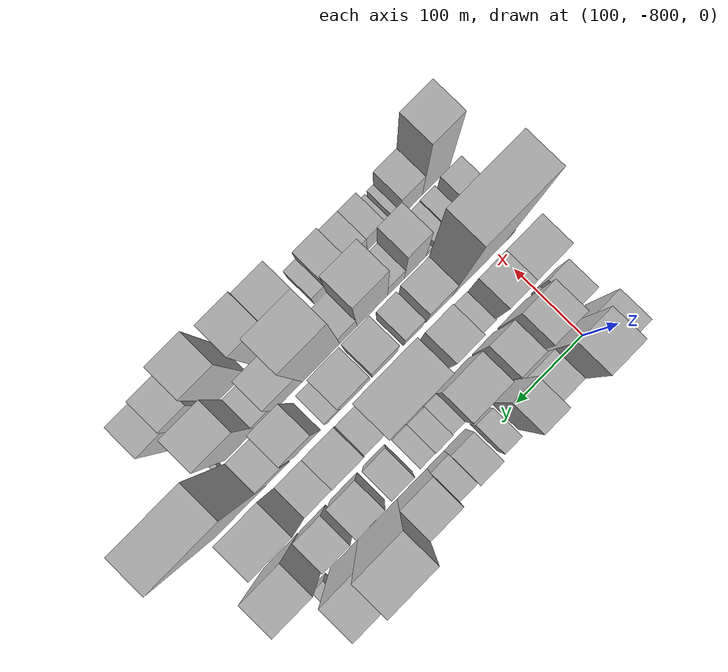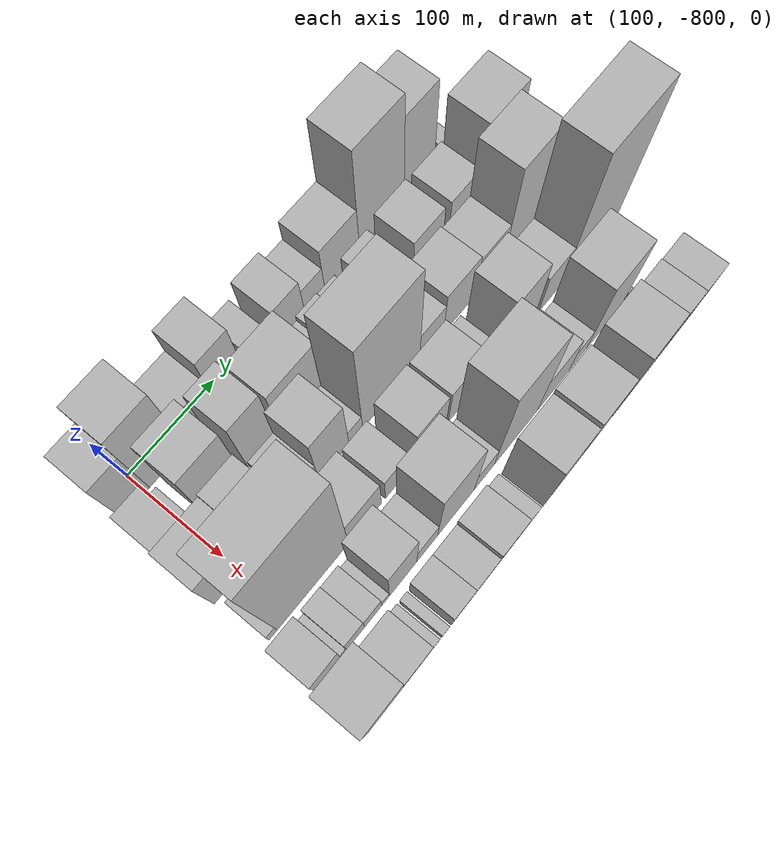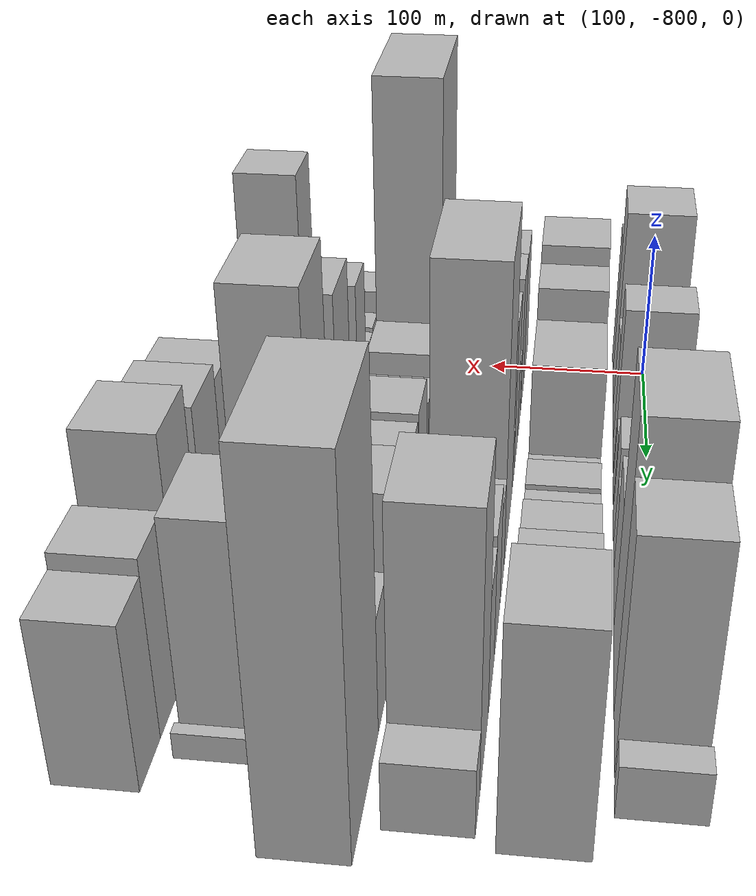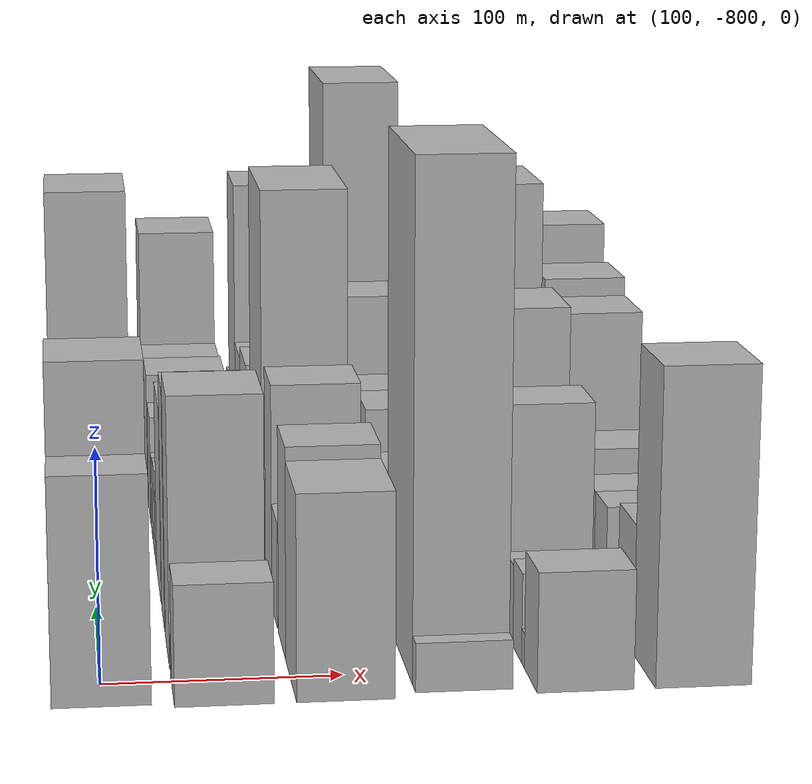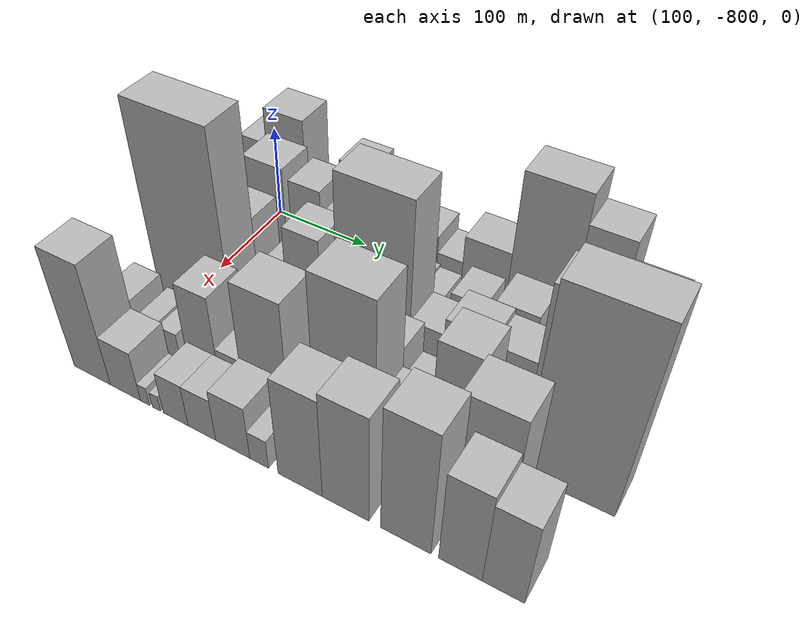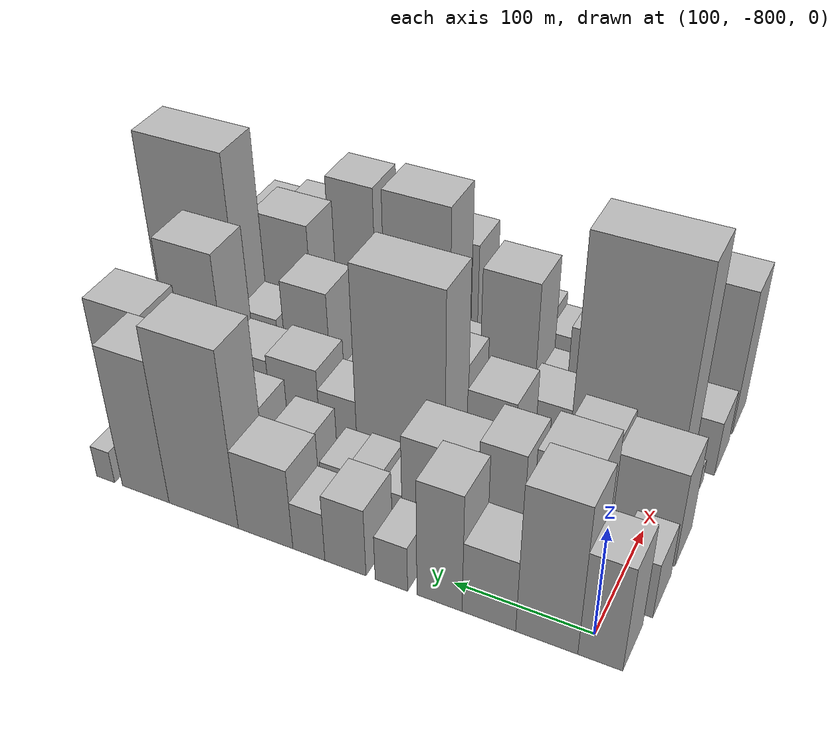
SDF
<sdf version="1.6">
 <world name="default">
  <model name="building_1">
   <static>1</static>
   <pose>100.0000 -810.8486 0 0.000000 0.000000 0.000000</pose>
   <link name="link">
    <pose>0 0 48.00 0 0 0</pose>
    <collision name="collision"><geometry><box><size>40.0000 30.3027 96.0000</size></box></geometry></collision>
    <visual name="visual">
     <cast_shadows>0</cast_shadows>
     <geometry><box><size>40.0000 30.3027 96.0000</size></box></geometry>
     <material>
      <script>
       <uri>model://HANNAS_wall/materials/scripts</uri>
       <uri>model://HANNAS_wall/materials/textures</uri>
       <name>vrc/HANNAS_wall</name>
      </script>
     </material>
    </visual>
   </link>
  </model>
  <model name="building_2">
   <static>1</static>
   <pose>100.0000 -774.1942 0 0.000000 0.000000 0.000000</pose>
   <link name="link">
    <pose>0 0 67.50 0 0 0</pose>
    <collision name="collision"><geometry><box><size>40.0000 43.0061 135.0000</size></box></geometry></collision>
    <visual name="visual">
     <cast_shadows>0</cast_shadows>
     <geometry><box><size>40.0000 43.0061 135.0000</size></box></geometry>
     <material>
      <script>
       <uri>model://HANNAS_wall/materials/scripts</uri>
       <uri>model://HANNAS_wall/materials/textures</uri>
       <name>vrc/HANNAS_wall</name>
      </script>
     </material>
    </visual>
   </link>
  </model>
  <model name="building_3">
   <static>1</static>
   <pose>100.0000 -733.5180 0 0.000000 0.000000 0.000000</pose>
   <link name="link">
    <pose>0 0 33.00 0 0 0</pose>
    <collision name="collision"><geometry><box><size>40.0000 38.3464 66.0000</size></box></geometry></collision>
    <visual name="visual">
     <cast_shadows>0</cast_shadows>
     <geometry><box><size>40.0000 38.3464 66.0000</size></box></geometry>
     <material>
      <script>
       <uri>model://HANNAS_wall/materials/scripts</uri>
       <uri>model://HANNAS_wall/materials/textures</uri>
       <name>vrc/HANNAS_wall</name>
      </script>
     </material>
    </visual>
   </link>
  </model>
  <model name="building_4">
   <static>1</static>
   <pose>100.0000 -697.7857 0 0.000000 0.000000 0.000000</pose>
   <link name="link">
    <pose>0 0 54.00 0 0 0</pose>
    <collision name="collision"><geometry><box><size>40.0000 33.1181 108.0000</size></box></geometry></collision>
    <visual name="visual">
     <cast_shadows>0</cast_shadows>
     <geometry><box><size>40.0000 33.1181 108.0000</size></box></geometry>
     <material>
      <script>
       <uri>model://HANNAS_wall/materials/scripts</uri>
       <uri>model://HANNAS_wall/materials/textures</uri>
       <name>vrc/HANNAS_wall</name>
      </script>
     </material>
    </visual>
   </link>
  </model>
  <model name="building_5">
   <static>1</static>
   <pose>100.0000 -661.9748 0 0.000000 0.000000 0.000000</pose>
   <link name="link">
    <pose>0 0 21.00 0 0 0</pose>
    <collision name="collision"><geometry><box><size>40.0000 24.5038 42.0000</size></box></geometry></collision>
    <visual name="visual">
     <cast_shadows>0</cast_shadows>
     <geometry><box><size>40.0000 24.5038 42.0000</size></box></geometry>
     <material>
      <script>
       <uri>model://HANNAS_wall/materials/scripts</uri>
       <uri>model://HANNAS_wall/materials/textures</uri>
       <name>vrc/HANNAS_wall</name>
      </script>
     </material>
    </visual>
   </link>
  </model>
  <model name="building_6">
   <static>1</static>
   <pose>100.0000 -626.8014 0 0.000000 0.000000 0.000000</pose>
   <link name="link">
    <pose>0 0 31.50 0 0 0</pose>
    <collision name="collision"><geometry><box><size>40.0000 31.8430 63.0000</size></box></geometry></collision>
    <visual name="visual">
     <cast_shadows>0</cast_shadows>
     <geometry><box><size>40.0000 31.8430 63.0000</size></box></geometry>
     <material>
      <script>
       <uri>model://HANNAS_wall/materials/scripts</uri>
       <uri>model://HANNAS_wall/materials/textures</uri>
       <name>vrc/HANNAS_wall</name>
      </script>
     </material>
    </visual>
   </link>
  </model>
  <model name="building_7">
   <static>1</static>
   <pose>100.0000 -598.2045 0 0.000000 0.000000 0.000000</pose>
   <link name="link">
    <pose>0 0 22.50 0 0 0</pose>
    <collision name="collision"><geometry><box><size>40.0000 25.3507 45.0000</size></box></geometry></collision>
    <visual name="visual">
     <cast_shadows>0</cast_shadows>
     <geometry><box><size>40.0000 25.3507 45.0000</size></box></geometry>
     <material>
      <script>
       <uri>model://HANNAS_wall/materials/scripts</uri>
       <uri>model://HANNAS_wall/materials/textures</uri>
       <name>vrc/HANNAS_wall</name>
      </script>
     </material>
    </visual>
   </link>
  </model>
  <model name="building_8">
   <static>1</static>
   <pose>100.0000 -563.3122 0 0.000000 0.000000 0.000000</pose>
   <link name="link">
    <pose>0 0 37.50 0 0 0</pose>
    <collision name="collision"><geometry><box><size>40.0000 44.4339 75.0000</size></box></geometry></collision>
    <visual name="visual">
     <cast_shadows>0</cast_shadows>
     <geometry><box><size>40.0000 44.4339 75.0000</size></box></geometry>
     <material>
      <script>
       <uri>model://HANNAS_wall/materials/scripts</uri>
       <uri>model://HANNAS_wall/materials/textures</uri>
       <name>vrc/HANNAS_wall</name>
      </script>
     </material>
    </visual>
   </link>
  </model>
  <model name="building_9">
   <static>1</static>
   <pose>100.0000 -511.8582 0 0.000000 0.000000 0.000000</pose>
   <link name="link">
    <pose>0 0 81.00 0 0 0</pose>
    <collision name="collision"><geometry><box><size>40.0000 58.4741 162.0000</size></box></geometry></collision>
    <visual name="visual">
     <cast_shadows>0</cast_shadows>
     <geometry><box><size>40.0000 58.4741 162.0000</size></box></geometry>
     <material>
      <script>
       <uri>model://HANNAS_wall/materials/scripts</uri>
       <uri>model://HANNAS_wall/materials/textures</uri>
       <name>vrc/HANNAS_wall</name>
      </script>
     </material>
    </visual>
   </link>
  </model>
  <model name="building_10">
   <static>1</static>
   <pose>100.0000 -462.2591 0 0.000000 0.000000 0.000000</pose>
   <link name="link">
    <pose>0 0 66.00 0 0 0</pose>
    <collision name="collision"><geometry><box><size>40.0000 40.7242 132.0000</size></box></geometry></collision>
    <visual name="visual">
     <cast_shadows>0</cast_shadows>
     <geometry><box><size>40.0000 40.7242 132.0000</size></box></geometry>
     <material>
      <script>
       <uri>model://HANNAS_wall/materials/scripts</uri>
       <uri>model://HANNAS_wall/materials/textures</uri>
       <name>vrc/HANNAS_wall</name>
      </script>
     </material>
    </visual>
   </link>
  </model>
  <model name="building_11">
   <static>1</static>
   <pose>100.0000 -426.9195 0 0.000000 0.000000 0.000000</pose>
   <link name="link">
    <pose>0 0 15.00 0 0 0</pose>
    <collision name="collision"><geometry><box><size>40.0000 15.9549 30.0000</size></box></geometry></collision>
    <visual name="visual">
     <cast_shadows>0</cast_shadows>
     <geometry><box><size>40.0000 15.9549 30.0000</size></box></geometry>
     <material>
      <script>
       <uri>model://HANNAS_wall/materials/scripts</uri>
       <uri>model://HANNAS_wall/materials/textures</uri>
       <name>vrc/HANNAS_wall</name>
      </script>
     </material>
    </visual>
   </link>
  </model>
  <model name="building_44">
   <static>1</static>
   <pose>149.0000 -815.3887 0 0.000000 0.000000 0.000000</pose>
   <link name="link">
    <pose>0 0 25.50 0 0 0</pose>
    <collision name="collision"><geometry><box><size>40.0000 29.2225 51.0000</size></box></geometry></collision>
    <visual name="visual">
     <cast_shadows>0</cast_shadows>
     <geometry><box><size>40.0000 29.2225 51.0000</size></box></geometry>
     <material>
      <script>
       <uri>model://HANNAS_wall/materials/scripts</uri>
       <uri>model://HANNAS_wall/materials/textures</uri>
       <name>vrc/HANNAS_wall</name>
      </script>
     </material>
    </visual>
   </link>
  </model>
  <model name="building_45">
   <static>1</static>
   <pose>149.0000 -796.7744 0 0.000000 0.000000 0.000000</pose>
   <link name="link">
    <pose>0 0 9.00 0 0 0</pose>
    <collision name="collision"><geometry><box><size>40.0000 8.0061 18.0000</size></box></geometry></collision>
    <visual name="visual">
     <cast_shadows>0</cast_shadows>
     <geometry><box><size>40.0000 8.0061 18.0000</size></box></geometry>
     <material>
      <script>
       <uri>model://HANNAS_wall/materials/scripts</uri>
       <uri>model://HANNAS_wall/materials/textures</uri>
       <name>vrc/HANNAS_wall</name>
      </script>
     </material>
    </visual>
   </link>
  </model>
  <model name="building_46">
   <static>1</static>
   <pose>149.0000 -763.4466 0 0.000000 0.000000 0.000000</pose>
   <link name="link">
    <pose>0 0 58.50 0 0 0</pose>
    <collision name="collision"><geometry><box><size>40.0000 42.6495 117.0000</size></box></geometry></collision>
    <visual name="visual">
     <cast_shadows>0</cast_shadows>
     <geometry><box><size>40.0000 42.6495 117.0000</size></box></geometry>
     <material>
      <script>
       <uri>model://HANNAS_wall/materials/scripts</uri>
       <uri>model://HANNAS_wall/materials/textures</uri>
       <name>vrc/HANNAS_wall</name>
      </script>
     </material>
    </visual>
   </link>
  </model>
  <model name="building_47">
   <static>1</static>
   <pose>149.0000 -719.6608 0 0.000000 0.000000 0.000000</pose>
   <link name="link">
    <pose>0 0 54.00 0 0 0</pose>
    <collision name="collision"><geometry><box><size>40.0000 32.9222 108.0000</size></box></geometry></collision>
    <visual name="visual">
     <cast_shadows>0</cast_shadows>
     <geometry><box><size>40.0000 32.9222 108.0000</size></box></geometry>
     <material>
      <script>
       <uri>model://HANNAS_wall/materials/scripts</uri>
       <uri>model://HANNAS_wall/materials/textures</uri>
       <name>vrc/HANNAS_wall</name>
      </script>
     </material>
    </visual>
   </link>
  </model>
  <model name="building_48">
   <static>1</static>
   <pose>149.0000 -672.5919 0 0.000000 0.000000 0.000000</pose>
   <link name="link">
    <pose>0 0 45.00 0 0 0</pose>
    <collision name="collision"><geometry><box><size>40.0000 53.2155 90.0000</size></box></geometry></collision>
    <visual name="visual">
     <cast_shadows>0</cast_shadows>
     <geometry><box><size>40.0000 53.2155 90.0000</size></box></geometry>
     <material>
      <script>
       <uri>model://HANNAS_wall/materials/scripts</uri>
       <uri>model://HANNAS_wall/materials/textures</uri>
       <name>vrc/HANNAS_wall</name>
      </script>
     </material>
    </visual>
   </link>
  </model>
  <model name="building_49">
   <static>1</static>
   <pose>149.0000 -636.8021 0 0.000000 0.000000 0.000000</pose>
   <link name="link">
    <pose>0 0 16.50 0 0 0</pose>
    <collision name="collision"><geometry><box><size>40.0000 18.3640 33.0000</size></box></geometry></collision>
    <visual name="visual">
     <cast_shadows>0</cast_shadows>
     <geometry><box><size>40.0000 18.3640 33.0000</size></box></geometry>
     <material>
      <script>
       <uri>model://HANNAS_wall/materials/scripts</uri>
       <uri>model://HANNAS_wall/materials/textures</uri>
       <name>vrc/HANNAS_wall</name>
      </script>
     </material>
    </visual>
   </link>
  </model>
  <model name="building_50">
   <static>1</static>
   <pose>149.0000 -615.2574 0 0.000000 0.000000 0.000000</pose>
   <link name="link">
    <pose>0 0 21.00 0 0 0</pose>
    <collision name="collision"><geometry><box><size>40.0000 24.7254 42.0000</size></box></geometry></collision>
    <visual name="visual">
     <cast_shadows>0</cast_shadows>
     <geometry><box><size>40.0000 24.7254 42.0000</size></box></geometry>
     <material>
      <script>
       <uri>model://HANNAS_wall/materials/scripts</uri>
       <uri>model://HANNAS_wall/materials/textures</uri>
       <name>vrc/HANNAS_wall</name>
      </script>
     </material>
    </visual>
   </link>
  </model>
  <model name="building_51">
   <static>1</static>
   <pose>149.0000 -592.1713 0 0.000000 0.000000 0.000000</pose>
   <link name="link">
    <pose>0 0 19.50 0 0 0</pose>
    <collision name="collision"><geometry><box><size>40.0000 21.4468 39.0000</size></box></geometry></collision>
    <visual name="visual">
     <cast_shadows>0</cast_shadows>
     <geometry><box><size>40.0000 21.4468 39.0000</size></box></geometry>
     <material>
      <script>
       <uri>model://HANNAS_wall/materials/scripts</uri>
       <uri>model://HANNAS_wall/materials/textures</uri>
       <name>vrc/HANNAS_wall</name>
      </script>
     </material>
    </visual>
   </link>
  </model>
  <model name="building_52">
   <static>1</static>
   <pose>149.0000 -556.4604 0 0.000000 0.000000 0.000000</pose>
   <link name="link">
    <pose>0 0 27.00 0 0 0</pose>
    <collision name="collision"><geometry><box><size>40.0000 31.9750 54.0000</size></box></geometry></collision>
    <visual name="visual">
     <cast_shadows>0</cast_shadows>
     <geometry><box><size>40.0000 31.9750 54.0000</size></box></geometry>
     <material>
      <script>
       <uri>model://HANNAS_wall/materials/scripts</uri>
       <uri>model://HANNAS_wall/materials/textures</uri>
       <name>vrc/HANNAS_wall</name>
      </script>
     </material>
    </visual>
   </link>
  </model>
  <model name="building_53">
   <static>1</static>
   <pose>149.0000 -512.0067 0 0.000000 0.000000 0.000000</pose>
   <link name="link">
    <pose>0 0 33.00 0 0 0</pose>
    <collision name="collision"><geometry><box><size>40.0000 38.9326 66.0000</size></box></geometry></collision>
    <visual name="visual">
     <cast_shadows>0</cast_shadows>
     <geometry><box><size>40.0000 38.9326 66.0000</size></box></geometry>
     <material>
      <script>
       <uri>model://HANNAS_wall/materials/scripts</uri>
       <uri>model://HANNAS_wall/materials/textures</uri>
       <name>vrc/HANNAS_wall</name>
      </script>
     </material>
    </visual>
   </link>
  </model>
  <model name="building_54">
   <static>1</static>
   <pose>149.0000 -465.9677 0 0.000000 0.000000 0.000000</pose>
   <link name="link">
    <pose>0 0 31.50 0 0 0</pose>
    <collision name="collision"><geometry><box><size>40.0000 37.1453 63.0000</size></box></geometry></collision>
    <visual name="visual">
     <cast_shadows>0</cast_shadows>
     <geometry><box><size>40.0000 37.1453 63.0000</size></box></geometry>
     <material>
      <script>
       <uri>model://HANNAS_wall/materials/scripts</uri>
       <uri>model://HANNAS_wall/materials/textures</uri>
       <name>vrc/HANNAS_wall</name>
      </script>
     </material>
    </visual>
   </link>
  </model>
  <model name="building_55">
   <static>1</static>
   <pose>149.0000 -418.8858 0 0.000000 0.000000 0.000000</pose>
   <link name="link">
    <pose>0 0 61.50 0 0 0</pose>
    <collision name="collision"><geometry><box><size>40.0000 49.0186 123.0000</size></box></geometry></collision>
    <visual name="visual">
     <cast_shadows>0</cast_shadows>
     <geometry><box><size>40.0000 49.0186 123.0000</size></box></geometry>
     <material>
      <script>
       <uri>model://HANNAS_wall/materials/scripts</uri>
       <uri>model://HANNAS_wall/materials/textures</uri>
       <name>vrc/HANNAS_wall</name>
      </script>
     </material>
    </visual>
   </link>
  </model>
  <model name="building_93">
   <static>1</static>
   <pose>198.0000 -805.1397 0 0.000000 0.000000 0.000000</pose>
   <link name="link">
    <pose>0 0 43.50 0 0 0</pose>
    <collision name="collision"><geometry><box><size>40.0000 49.7205 87.0000</size></box></geometry></collision>
    <visual name="visual">
     <cast_shadows>0</cast_shadows>
     <geometry><box><size>40.0000 49.7205 87.0000</size></box></geometry>
     <material>
      <script>
       <uri>model://HANNAS_wall/materials/scripts</uri>
       <uri>model://HANNAS_wall/materials/textures</uri>
       <name>vrc/HANNAS_wall</name>
      </script>
     </material>
    </visual>
   </link>
  </model>
  <model name="building_94">
   <static>1</static>
   <pose>198.0000 -761.9925 0 0.000000 0.000000 0.000000</pose>
   <link name="link">
    <pose>0 0 46.50 0 0 0</pose>
    <collision name="collision"><geometry><box><size>40.0000 36.5740 93.0000</size></box></geometry></collision>
    <visual name="visual">
     <cast_shadows>0</cast_shadows>
     <geometry><box><size>40.0000 36.5740 93.0000</size></box></geometry>
     <material>
      <script>
       <uri>model://HANNAS_wall/materials/scripts</uri>
       <uri>model://HANNAS_wall/materials/textures</uri>
       <name>vrc/HANNAS_wall</name>
      </script>
     </material>
    </visual>
   </link>
  </model>
  <model name="building_95">
   <static>1</static>
   <pose>198.0000 -723.4073 0 0.000000 0.000000 0.000000</pose>
   <link name="link">
    <pose>0 0 24.00 0 0 0</pose>
    <collision name="collision"><geometry><box><size>40.0000 28.5965 48.0000</size></box></geometry></collision>
    <visual name="visual">
     <cast_shadows>0</cast_shadows>
     <geometry><box><size>40.0000 28.5965 48.0000</size></box></geometry>
     <material>
      <script>
       <uri>model://HANNAS_wall/materials/scripts</uri>
       <uri>model://HANNAS_wall/materials/textures</uri>
       <name>vrc/HANNAS_wall</name>
      </script>
     </material>
    </visual>
   </link>
  </model>
  <model name="building_96">
   <static>1</static>
   <pose>198.0000 -690.9135 0 0.000000 0.000000 0.000000</pose>
   <link name="link">
    <pose>0 0 51.00 0 0 0</pose>
    <collision name="collision"><geometry><box><size>40.0000 36.3909 102.0000</size></box></geometry></collision>
    <visual name="visual">
     <cast_shadows>0</cast_shadows>
     <geometry><box><size>40.0000 36.3909 102.0000</size></box></geometry>
     <material>
      <script>
       <uri>model://HANNAS_wall/materials/scripts</uri>
       <uri>model://HANNAS_wall/materials/textures</uri>
       <name>vrc/HANNAS_wall</name>
      </script>
     </material>
    </visual>
   </link>
  </model>
  <model name="building_97">
   <static>1</static>
   <pose>198.0000 -664.4490 0 0.000000 0.000000 0.000000</pose>
   <link name="link">
    <pose>0 0 16.50 0 0 0</pose>
    <collision name="collision"><geometry><box><size>40.0000 16.5383 33.0000</size></box></geometry></collision>
    <visual name="visual">
     <cast_shadows>0</cast_shadows>
     <geometry><box><size>40.0000 16.5383 33.0000</size></box></geometry>
     <material>
      <script>
       <uri>model://HANNAS_wall/materials/scripts</uri>
       <uri>model://HANNAS_wall/materials/textures</uri>
       <name>vrc/HANNAS_wall</name>
      </script>
     </material>
    </visual>
   </link>
  </model>
  <model name="building_98">
   <static>1</static>
   <pose>198.0000 -620.3530 0 0.000000 0.000000 0.000000</pose>
   <link name="link">
    <pose>0 0 90.00 0 0 0</pose>
    <collision name="collision"><geometry><box><size>40.0000 71.6537 180.0000</size></box></geometry></collision>
    <visual name="visual">
     <cast_shadows>0</cast_shadows>
     <geometry><box><size>40.0000 71.6537 180.0000</size></box></geometry>
     <material>
      <script>
       <uri>model://HANNAS_wall/materials/scripts</uri>
       <uri>model://HANNAS_wall/materials/textures</uri>
       <name>vrc/HANNAS_wall</name>
      </script>
     </material>
    </visual>
   </link>
  </model>
  <model name="building_99">
   <static>1</static>
   <pose>198.0000 -568.9089 0 0.000000 0.000000 0.000000</pose>
   <link name="link">
    <pose>0 0 28.50 0 0 0</pose>
    <collision name="collision"><geometry><box><size>40.0000 31.2344 57.0000</size></box></geometry></collision>
    <visual name="visual">
     <cast_shadows>0</cast_shadows>
     <geometry><box><size>40.0000 31.2344 57.0000</size></box></geometry>
     <material>
      <script>
       <uri>model://HANNAS_wall/materials/scripts</uri>
       <uri>model://HANNAS_wall/materials/textures</uri>
       <name>vrc/HANNAS_wall</name>
      </script>
     </material>
    </visual>
   </link>
  </model>
  <model name="building_100">
   <static>1</static>
   <pose>198.0000 -532.1586 0 0.000000 0.000000 0.000000</pose>
   <link name="link">
    <pose>0 0 37.50 0 0 0</pose>
    <collision name="collision"><geometry><box><size>40.0000 42.2663 75.0000</size></box></geometry></collision>
    <visual name="visual">
     <cast_shadows>0</cast_shadows>
     <geometry><box><size>40.0000 42.2663 75.0000</size></box></geometry>
     <material>
      <script>
       <uri>model://HANNAS_wall/materials/scripts</uri>
       <uri>model://HANNAS_wall/materials/textures</uri>
       <name>vrc/HANNAS_wall</name>
      </script>
     </material>
    </visual>
   </link>
  </model>
  <model name="building_101">
   <static>1</static>
   <pose>198.0000 -492.3566 0 0.000000 0.000000 0.000000</pose>
   <link name="link">
    <pose>0 0 34.50 0 0 0</pose>
    <collision name="collision"><geometry><box><size>40.0000 37.3378 69.0000</size></box></geometry></collision>
    <visual name="visual">
     <cast_shadows>0</cast_shadows>
     <geometry><box><size>40.0000 37.3378 69.0000</size></box></geometry>
     <material>
      <script>
       <uri>model://HANNAS_wall/materials/scripts</uri>
       <uri>model://HANNAS_wall/materials/textures</uri>
       <name>vrc/HANNAS_wall</name>
      </script>
     </material>
    </visual>
   </link>
  </model>
  <model name="building_102">
   <static>1</static>
   <pose>198.0000 -448.8772 0 0.000000 0.000000 0.000000</pose>
   <link name="link">
    <pose>0 0 76.50 0 0 0</pose>
    <collision name="collision"><geometry><box><size>40.0000 49.6210 153.0000</size></box></geometry></collision>
    <visual name="visual">
     <cast_shadows>0</cast_shadows>
     <geometry><box><size>40.0000 49.6210 153.0000</size></box></geometry>
     <material>
      <script>
       <uri>model://HANNAS_wall/materials/scripts</uri>
       <uri>model://HANNAS_wall/materials/textures</uri>
       <name>vrc/HANNAS_wall</name>
      </script>
     </material>
    </visual>
   </link>
  </model>
  <model name="building_103">
   <static>1</static>
   <pose>198.0000 -412.6466 0 0.000000 0.000000 0.000000</pose>
   <link name="link">
    <pose>0 0 19.50 0 0 0</pose>
    <collision name="collision"><geometry><box><size>40.0000 22.8403 39.0000</size></box></geometry></collision>
    <visual name="visual">
     <cast_shadows>0</cast_shadows>
     <geometry><box><size>40.0000 22.8403 39.0000</size></box></geometry>
     <material>
      <script>
       <uri>model://HANNAS_wall/materials/scripts</uri>
       <uri>model://HANNAS_wall/materials/textures</uri>
       <name>vrc/HANNAS_wall</name>
      </script>
     </material>
    </visual>
   </link>
  </model>
  <model name="building_139">
   <static>1</static>
   <pose>247.0000 -819.3957 0 0.000000 0.000000 0.000000</pose>
   <link name="link">
    <pose>0 0 10.50 0 0 0</pose>
    <collision name="collision"><geometry><box><size>40.0000 9.2087 21.0000</size></box></geometry></collision>
    <visual name="visual">
     <cast_shadows>0</cast_shadows>
     <geometry><box><size>40.0000 9.2087 21.0000</size></box></geometry>
     <material>
      <script>
       <uri>model://HANNAS_wall/materials/scripts</uri>
       <uri>model://HANNAS_wall/materials/textures</uri>
       <name>vrc/HANNAS_wall</name>
      </script>
     </material>
    </visual>
   </link>
  </model>
  <model name="building_140">
   <static>1</static>
   <pose>247.0000 -773.5808 0 0.000000 0.000000 0.000000</pose>
   <link name="link">
    <pose>0 0 109.50 0 0 0</pose>
    <collision name="collision"><geometry><box><size>40.0000 82.4210 219.0000</size></box></geometry></collision>
    <visual name="visual">
     <cast_shadows>0</cast_shadows>
     <geometry><box><size>40.0000 82.4210 219.0000</size></box></geometry>
     <material>
      <script>
       <uri>model://HANNAS_wall/materials/scripts</uri>
       <uri>model://HANNAS_wall/materials/textures</uri>
       <name>vrc/HANNAS_wall</name>
      </script>
     </material>
    </visual>
   </link>
  </model>
  <model name="building_141">
   <static>1</static>
   <pose>247.0000 -712.7684 0 0.000000 0.000000 0.000000</pose>
   <link name="link">
    <pose>0 0 33.00 0 0 0</pose>
    <collision name="collision"><geometry><box><size>40.0000 39.2038 66.0000</size></box></geometry></collision>
    <visual name="visual">
     <cast_shadows>0</cast_shadows>
     <geometry><box><size>40.0000 39.2038 66.0000</size></box></geometry>
     <material>
      <script>
       <uri>model://HANNAS_wall/materials/scripts</uri>
       <uri>model://HANNAS_wall/materials/textures</uri>
       <name>vrc/HANNAS_wall</name>
      </script>
     </material>
    </visual>
   </link>
  </model>
  <model name="building_142">
   <static>1</static>
   <pose>247.0000 -674.0075 0 0.000000 0.000000 0.000000</pose>
   <link name="link">
    <pose>0 0 27.00 0 0 0</pose>
    <collision name="collision"><geometry><box><size>40.0000 28.3180 54.0000</size></box></geometry></collision>
    <visual name="visual">
     <cast_shadows>0</cast_shadows>
     <geometry><box><size>40.0000 28.3180 54.0000</size></box></geometry>
     <material>
      <script>
       <uri>model://HANNAS_wall/materials/scripts</uri>
       <uri>model://HANNAS_wall/materials/textures</uri>
       <name>vrc/HANNAS_wall</name>
      </script>
     </material>
    </visual>
   </link>
  </model>
  <model name="building_143">
   <static>1</static>
   <pose>247.0000 -631.9404 0 0.000000 0.000000 0.000000</pose>
   <link name="link">
    <pose>0 0 37.50 0 0 0</pose>
    <collision name="collision"><geometry><box><size>40.0000 37.8161 75.0000</size></box></geometry></collision>
    <visual name="visual">
     <cast_shadows>0</cast_shadows>
     <geometry><box><size>40.0000 37.8161 75.0000</size></box></geometry>
     <material>
      <script>
       <uri>model://HANNAS_wall/materials/scripts</uri>
       <uri>model://HANNAS_wall/materials/textures</uri>
       <name>vrc/HANNAS_wall</name>
      </script>
     </material>
    </visual>
   </link>
  </model>
  <model name="building_144">
   <static>1</static>
   <pose>247.0000 -588.4529 0 0.000000 0.000000 0.000000</pose>
   <link name="link">
    <pose>0 0 36.00 0 0 0</pose>
    <collision name="collision"><geometry><box><size>40.0000 43.1588 72.0000</size></box></geometry></collision>
    <visual name="visual">
     <cast_shadows>0</cast_shadows>
     <geometry><box><size>40.0000 43.1588 72.0000</size></box></geometry>
     <material>
      <script>
       <uri>model://HANNAS_wall/materials/scripts</uri>
       <uri>model://HANNAS_wall/materials/textures</uri>
       <name>vrc/HANNAS_wall</name>
      </script>
     </material>
    </visual>
   </link>
  </model>
  <model name="building_145">
   <static>1</static>
   <pose>247.0000 -556.4458 0 0.000000 0.000000 0.000000</pose>
   <link name="link">
    <pose>0 0 19.50 0 0 0</pose>
    <collision name="collision"><geometry><box><size>40.0000 20.8554 39.0000</size></box></geometry></collision>
    <visual name="visual">
     <cast_shadows>0</cast_shadows>
     <geometry><box><size>40.0000 20.8554 39.0000</size></box></geometry>
     <material>
      <script>
       <uri>model://HANNAS_wall/materials/scripts</uri>
       <uri>model://HANNAS_wall/materials/textures</uri>
       <name>vrc/HANNAS_wall</name>
      </script>
     </material>
    </visual>
   </link>
  </model>
  <model name="building_146">
   <static>1</static>
   <pose>247.0000 -516.2407 0 0.000000 0.000000 0.000000</pose>
   <link name="link">
    <pose>0 0 52.50 0 0 0</pose>
    <collision name="collision"><geometry><box><size>40.0000 39.5548 105.0000</size></box></geometry></collision>
    <visual name="visual">
     <cast_shadows>0</cast_shadows>
     <geometry><box><size>40.0000 39.5548 105.0000</size></box></geometry>
     <material>
      <script>
       <uri>model://HANNAS_wall/materials/scripts</uri>
       <uri>model://HANNAS_wall/materials/textures</uri>
       <name>vrc/HANNAS_wall</name>
      </script>
     </material>
    </visual>
   </link>
  </model>
  <model name="building_147">
   <static>1</static>
   <pose>247.0000 -473.5901 0 0.000000 0.000000 0.000000</pose>
   <link name="link">
    <pose>0 0 33.00 0 0 0</pose>
    <collision name="collision"><geometry><box><size>40.0000 33.7464 66.0000</size></box></geometry></collision>
    <visual name="visual">
     <cast_shadows>0</cast_shadows>
     <geometry><box><size>40.0000 33.7464 66.0000</size></box></geometry>
     <material>
      <script>
       <uri>model://HANNAS_wall/materials/scripts</uri>
       <uri>model://HANNAS_wall/materials/textures</uri>
       <name>vrc/HANNAS_wall</name>
      </script>
     </material>
    </visual>
   </link>
  </model>
  <model name="building_148">
   <static>1</static>
   <pose>247.0000 -418.9582 0 0.000000 0.000000 0.000000</pose>
   <link name="link">
    <pose>0 0 102.00 0 0 0</pose>
    <collision name="collision"><geometry><box><size>40.0000 75.5174 204.0000</size></box></geometry></collision>
    <visual name="visual">
     <cast_shadows>0</cast_shadows>
     <geometry><box><size>40.0000 75.5174 204.0000</size></box></geometry>
     <material>
      <script>
       <uri>model://HANNAS_wall/materials/scripts</uri>
       <uri>model://HANNAS_wall/materials/textures</uri>
       <name>vrc/HANNAS_wall</name>
      </script>
     </material>
    </visual>
   </link>
  </model>
  <model name="building_187">
   <static>1</static>
   <pose>296.0000 -815.0991 0 0.000000 0.000000 0.000000</pose>
   <link name="link">
    <pose>0 0 25.50 0 0 0</pose>
    <collision name="collision"><geometry><box><size>40.0000 29.8017 51.0000</size></box></geometry></collision>
    <visual name="visual">
     <cast_shadows>0</cast_shadows>
     <geometry><box><size>40.0000 29.8017 51.0000</size></box></geometry>
     <material>
      <script>
       <uri>model://HANNAS_wall/materials/scripts</uri>
       <uri>model://HANNAS_wall/materials/textures</uri>
       <name>vrc/HANNAS_wall</name>
      </script>
     </material>
    </visual>
   </link>
  </model>
  <model name="building_188">
   <static>1</static>
   <pose>296.0000 -796.9288 0 0.000000 0.000000 0.000000</pose>
   <link name="link">
    <pose>0 0 7.50 0 0 0</pose>
    <collision name="collision"><geometry><box><size>40.0000 6.5389 15.0000</size></box></geometry></collision>
    <visual name="visual">
     <cast_shadows>0</cast_shadows>
     <geometry><box><size>40.0000 6.5389 15.0000</size></box></geometry>
     <material>
      <script>
       <uri>model://HANNAS_wall/materials/scripts</uri>
       <uri>model://HANNAS_wall/materials/textures</uri>
       <name>vrc/HANNAS_wall</name>
      </script>
     </material>
    </visual>
   </link>
  </model>
  <model name="building_189">
   <static>1</static>
   <pose>296.0000 -783.1127 0 0.000000 0.000000 0.000000</pose>
   <link name="link">
    <pose>0 0 19.50 0 0 0</pose>
    <collision name="collision"><geometry><box><size>40.0000 21.0933 39.0000</size></box></geometry></collision>
    <visual name="visual">
     <cast_shadows>0</cast_shadows>
     <geometry><box><size>40.0000 21.0933 39.0000</size></box></geometry>
     <material>
      <script>
       <uri>model://HANNAS_wall/materials/scripts</uri>
       <uri>model://HANNAS_wall/materials/textures</uri>
       <name>vrc/HANNAS_wall</name>
      </script>
     </material>
    </visual>
   </link>
  </model>
  <model name="building_190">
   <static>1</static>
   <pose>296.0000 -762.6320 0 0.000000 0.000000 0.000000</pose>
   <link name="link">
    <pose>0 0 18.00 0 0 0</pose>
    <collision name="collision"><geometry><box><size>40.0000 19.8681 36.0000</size></box></geometry></collision>
    <visual name="visual">
     <cast_shadows>0</cast_shadows>
     <geometry><box><size>40.0000 19.8681 36.0000</size></box></geometry>
     <material>
      <script>
       <uri>model://HANNAS_wall/materials/scripts</uri>
       <uri>model://HANNAS_wall/materials/textures</uri>
       <name>vrc/HANNAS_wall</name>
      </script>
     </material>
    </visual>
   </link>
  </model>
  <model name="building_191">
   <static>1</static>
   <pose>296.0000 -748.2059 0 0.000000 0.000000 0.000000</pose>
   <link name="link">
    <pose>0 0 9.00 0 0 0</pose>
    <collision name="collision"><geometry><box><size>40.0000 8.9840 18.0000</size></box></geometry></collision>
    <visual name="visual">
     <cast_shadows>0</cast_shadows>
     <geometry><box><size>40.0000 8.9840 18.0000</size></box></geometry>
     <material>
      <script>
       <uri>model://HANNAS_wall/materials/scripts</uri>
       <uri>model://HANNAS_wall/materials/textures</uri>
       <name>vrc/HANNAS_wall</name>
      </script>
     </material>
    </visual>
   </link>
  </model>
  <model name="building_192">
   <static>1</static>
   <pose>296.0000 -727.4353 0 0.000000 0.000000 0.000000</pose>
   <link name="link">
    <pose>0 0 49.50 0 0 0</pose>
    <collision name="collision"><geometry><box><size>40.0000 32.5571 99.0000</size></box></geometry></collision>
    <visual name="visual">
     <cast_shadows>0</cast_shadows>
     <geometry><box><size>40.0000 32.5571 99.0000</size></box></geometry>
     <material>
      <script>
       <uri>model://HANNAS_wall/materials/scripts</uri>
       <uri>model://HANNAS_wall/materials/textures</uri>
       <name>vrc/HANNAS_wall</name>
      </script>
     </material>
    </visual>
   </link>
  </model>
  <model name="building_193">
   <static>1</static>
   <pose>296.0000 -698.5770 0 0.000000 0.000000 0.000000</pose>
   <link name="link">
    <pose>0 0 21.00 0 0 0</pose>
    <collision name="collision"><geometry><box><size>40.0000 25.1596 42.0000</size></box></geometry></collision>
    <visual name="visual">
     <cast_shadows>0</cast_shadows>
     <geometry><box><size>40.0000 25.1596 42.0000</size></box></geometry>
     <material>
      <script>
       <uri>model://HANNAS_wall/materials/scripts</uri>
       <uri>model://HANNAS_wall/materials/textures</uri>
       <name>vrc/HANNAS_wall</name>
      </script>
     </material>
    </visual>
   </link>
  </model>
  <model name="building_194">
   <static>1</static>
   <pose>296.0000 -663.1906 0 0.000000 0.000000 0.000000</pose>
   <link name="link">
    <pose>0 0 64.50 0 0 0</pose>
    <collision name="collision"><geometry><box><size>40.0000 45.6131 129.0000</size></box></geometry></collision>
    <visual name="visual">
     <cast_shadows>0</cast_shadows>
     <geometry><box><size>40.0000 45.6131 129.0000</size></box></geometry>
     <material>
      <script>
       <uri>model://HANNAS_wall/materials/scripts</uri>
       <uri>model://HANNAS_wall/materials/textures</uri>
       <name>vrc/HANNAS_wall</name>
      </script>
     </material>
    </visual>
   </link>
  </model>
  <model name="building_195">
   <static>1</static>
   <pose>296.0000 -627.5845 0 0.000000 0.000000 0.000000</pose>
   <link name="link">
    <pose>0 0 22.50 0 0 0</pose>
    <collision name="collision"><geometry><box><size>40.0000 25.5991 45.0000</size></box></geometry></collision>
    <visual name="visual">
     <cast_shadows>0</cast_shadows>
     <geometry><box><size>40.0000 25.5991 45.0000</size></box></geometry>
     <material>
      <script>
       <uri>model://HANNAS_wall/materials/scripts</uri>
       <uri>model://HANNAS_wall/materials/textures</uri>
       <name>vrc/HANNAS_wall</name>
      </script>
     </material>
    </visual>
   </link>
  </model>
  <model name="building_196">
   <static>1</static>
   <pose>296.0000 -586.7546 0 0.000000 0.000000 0.000000</pose>
   <link name="link">
    <pose>0 0 87.00 0 0 0</pose>
    <collision name="collision"><geometry><box><size>40.0000 56.0608 174.0000</size></box></geometry></collision>
    <visual name="visual">
     <cast_shadows>0</cast_shadows>
     <geometry><box><size>40.0000 56.0608 174.0000</size></box></geometry>
     <material>
      <script>
       <uri>model://HANNAS_wall/materials/scripts</uri>
       <uri>model://HANNAS_wall/materials/textures</uri>
       <name>vrc/HANNAS_wall</name>
      </script>
     </material>
    </visual>
   </link>
  </model>
  <model name="building_197">
   <static>1</static>
   <pose>296.0000 -537.6436 0 0.000000 0.000000 0.000000</pose>
   <link name="link">
    <pose>0 0 36.00 0 0 0</pose>
    <collision name="collision"><geometry><box><size>40.0000 42.1612 72.0000</size></box></geometry></collision>
    <visual name="visual">
     <cast_shadows>0</cast_shadows>
     <geometry><box><size>40.0000 42.1612 72.0000</size></box></geometry>
     <material>
      <script>
       <uri>model://HANNAS_wall/materials/scripts</uri>
       <uri>model://HANNAS_wall/materials/textures</uri>
       <name>vrc/HANNAS_wall</name>
      </script>
     </material>
    </visual>
   </link>
  </model>
  <model name="building_198">
   <static>1</static>
   <pose>296.0000 -504.7609 0 0.000000 0.000000 0.000000</pose>
   <link name="link">
    <pose>0 0 21.00 0 0 0</pose>
    <collision name="collision"><geometry><box><size>40.0000 23.6042 42.0000</size></box></geometry></collision>
    <visual name="visual">
     <cast_shadows>0</cast_shadows>
     <geometry><box><size>40.0000 23.6042 42.0000</size></box></geometry>
     <material>
      <script>
       <uri>model://HANNAS_wall/materials/scripts</uri>
       <uri>model://HANNAS_wall/materials/textures</uri>
       <name>vrc/HANNAS_wall</name>
      </script>
     </material>
    </visual>
   </link>
  </model>
  <model name="building_199">
   <static>1</static>
   <pose>296.0000 -468.4548 0 0.000000 0.000000 0.000000</pose>
   <link name="link">
    <pose>0 0 61.50 0 0 0</pose>
    <collision name="collision"><geometry><box><size>40.0000 49.0080 123.0000</size></box></geometry></collision>
    <visual name="visual">
     <cast_shadows>0</cast_shadows>
     <geometry><box><size>40.0000 49.0080 123.0000</size></box></geometry>
     <material>
      <script>
       <uri>model://HANNAS_wall/materials/scripts</uri>
       <uri>model://HANNAS_wall/materials/textures</uri>
       <name>vrc/HANNAS_wall</name>
      </script>
     </material>
    </visual>
   </link>
  </model>
  <model name="building_200">
   <static>1</static>
   <pose>296.0000 -434.5992 0 0.000000 0.000000 0.000000</pose>
   <link name="link">
    <pose>0 0 7.50 0 0 0</pose>
    <collision name="collision"><geometry><box><size>40.0000 6.7033 15.0000</size></box></geometry></collision>
    <visual name="visual">
     <cast_shadows>0</cast_shadows>
     <geometry><box><size>40.0000 6.7033 15.0000</size></box></geometry>
     <material>
      <script>
       <uri>model://HANNAS_wall/materials/scripts</uri>
       <uri>model://HANNAS_wall/materials/textures</uri>
       <name>vrc/HANNAS_wall</name>
      </script>
     </material>
    </visual>
   </link>
  </model>
  <model name="building_236">
   <static>1</static>
   <pose>345.0000 -809.3162 0 0.000000 0.000000 0.000000</pose>
   <link name="link">
    <pose>0 0 67.50 0 0 0</pose>
    <collision name="collision"><geometry><box><size>40.0000 41.3676 135.0000</size></box></geometry></collision>
    <visual name="visual">
     <cast_shadows>0</cast_shadows>
     <geometry><box><size>40.0000 41.3676 135.0000</size></box></geometry>
     <material>
      <script>
       <uri>model://HANNAS_wall/materials/scripts</uri>
       <uri>model://HANNAS_wall/materials/textures</uri>
       <name>vrc/HANNAS_wall</name>
      </script>
     </material>
    </visual>
   </link>
  </model>
  <model name="building_237">
   <static>1</static>
   <pose>345.0000 -772.0767 0 0.000000 0.000000 0.000000</pose>
   <link name="link">
    <pose>0 0 28.50 0 0 0</pose>
    <collision name="collision"><geometry><box><size>40.0000 33.1113 57.0000</size></box></geometry></collision>
    <visual name="visual">
     <cast_shadows>0</cast_shadows>
     <geometry><box><size>40.0000 33.1113 57.0000</size></box></geometry>
     <material>
      <script>
       <uri>model://HANNAS_wall/materials/scripts</uri>
       <uri>model://HANNAS_wall/materials/textures</uri>
       <name>vrc/HANNAS_wall</name>
      </script>
     </material>
    </visual>
   </link>
  </model>
  <model name="building_238">
   <static>1</static>
   <pose>345.0000 -750.6956 0 0.000000 0.000000 0.000000</pose>
   <link name="link">
    <pose>0 0 10.50 0 0 0</pose>
    <collision name="collision"><geometry><box><size>40.0000 9.6508 21.0000</size></box></geometry></collision>
    <visual name="visual">
     <cast_shadows>0</cast_shadows>
     <geometry><box><size>40.0000 9.6508 21.0000</size></box></geometry>
     <material>
      <script>
       <uri>model://HANNAS_wall/materials/scripts</uri>
       <uri>model://HANNAS_wall/materials/textures</uri>
       <name>vrc/HANNAS_wall</name>
      </script>
     </material>
    </visual>
   </link>
  </model>
  <model name="building_239">
   <static>1</static>
   <pose>345.0000 -738.5203 0 0.000000 0.000000 0.000000</pose>
   <link name="link">
    <pose>0 0 9.00 0 0 0</pose>
    <collision name="collision"><geometry><box><size>40.0000 8.6999 18.0000</size></box></geometry></collision>
    <visual name="visual">
     <cast_shadows>0</cast_shadows>
     <geometry><box><size>40.0000 8.6999 18.0000</size></box></geometry>
     <material>
      <script>
       <uri>model://HANNAS_wall/materials/scripts</uri>
       <uri>model://HANNAS_wall/materials/textures</uri>
       <name>vrc/HANNAS_wall</name>
      </script>
     </material>
    </visual>
   </link>
  </model>
  <model name="building_240">
   <static>1</static>
   <pose>345.0000 -718.2249 0 0.000000 0.000000 0.000000</pose>
   <link name="link">
    <pose>0 0 24.00 0 0 0</pose>
    <collision name="collision"><geometry><box><size>40.0000 25.8909 48.0000</size></box></geometry></collision>
    <visual name="visual">
     <cast_shadows>0</cast_shadows>
     <geometry><box><size>40.0000 25.8909 48.0000</size></box></geometry>
     <material>
      <script>
       <uri>model://HANNAS_wall/materials/scripts</uri>
       <uri>model://HANNAS_wall/materials/textures</uri>
       <name>vrc/HANNAS_wall</name>
      </script>
     </material>
    </visual>
   </link>
  </model>
  <model name="building_241">
   <static>1</static>
   <pose>345.0000 -691.2059 0 0.000000 0.000000 0.000000</pose>
   <link name="link">
    <pose>0 0 24.00 0 0 0</pose>
    <collision name="collision"><geometry><box><size>40.0000 28.1471 48.0000</size></box></geometry></collision>
    <visual name="visual">
     <cast_shadows>0</cast_shadows>
     <geometry><box><size>40.0000 28.1471 48.0000</size></box></geometry>
     <material>
      <script>
       <uri>model://HANNAS_wall/materials/scripts</uri>
       <uri>model://HANNAS_wall/materials/textures</uri>
       <name>vrc/HANNAS_wall</name>
      </script>
     </material>
    </visual>
   </link>
  </model>
  <model name="building_242">
   <static>1</static>
   <pose>345.0000 -660.3758 0 0.000000 0.000000 0.000000</pose>
   <link name="link">
    <pose>0 0 30.00 0 0 0</pose>
    <collision name="collision"><geometry><box><size>40.0000 33.5131 60.0000</size></box></geometry></collision>
    <visual name="visual">
     <cast_shadows>0</cast_shadows>
     <geometry><box><size>40.0000 33.5131 60.0000</size></box></geometry>
     <material>
      <script>
       <uri>model://HANNAS_wall/materials/scripts</uri>
       <uri>model://HANNAS_wall/materials/textures</uri>
       <name>vrc/HANNAS_wall</name>
      </script>
     </material>
    </visual>
   </link>
  </model>
  <model name="building_243">
   <static>1</static>
   <pose>345.0000 -634.6314 0 0.000000 0.000000 0.000000</pose>
   <link name="link">
    <pose>0 0 16.50 0 0 0</pose>
    <collision name="collision"><geometry><box><size>40.0000 17.9758 33.0000</size></box></geometry></collision>
    <visual name="visual">
     <cast_shadows>0</cast_shadows>
     <geometry><box><size>40.0000 17.9758 33.0000</size></box></geometry>
     <material>
      <script>
       <uri>model://HANNAS_wall/materials/scripts</uri>
       <uri>model://HANNAS_wall/materials/textures</uri>
       <name>vrc/HANNAS_wall</name>
      </script>
     </material>
    </visual>
   </link>
  </model>
  <model name="building_244">
   <static>1</static>
   <pose>345.0000 -596.3355 0 0.000000 0.000000 0.000000</pose>
   <link name="link">
    <pose>0 0 55.50 0 0 0</pose>
    <collision name="collision"><geometry><box><size>40.0000 40.6161 111.0000</size></box></geometry></collision>
    <visual name="visual">
     <cast_shadows>0</cast_shadows>
     <geometry><box><size>40.0000 40.6161 111.0000</size></box></geometry>
     <material>
      <script>
       <uri>model://HANNAS_wall/materials/scripts</uri>
       <uri>model://HANNAS_wall/materials/textures</uri>
       <name>vrc/HANNAS_wall</name>
      </script>
     </material>
    </visual>
   </link>
  </model>
  <model name="building_245">
   <static>1</static>
   <pose>345.0000 -555.4638 0 0.000000 0.000000 0.000000</pose>
   <link name="link">
    <pose>0 0 60.00 0 0 0</pose>
    <collision name="collision"><geometry><box><size>40.0000 41.1274 120.0000</size></box></geometry></collision>
    <visual name="visual">
     <cast_shadows>0</cast_shadows>
     <geometry><box><size>40.0000 41.1274 120.0000</size></box></geometry>
     <material>
      <script>
       <uri>model://HANNAS_wall/materials/scripts</uri>
       <uri>model://HANNAS_wall/materials/textures</uri>
       <name>vrc/HANNAS_wall</name>
      </script>
     </material>
    </visual>
   </link>
  </model>
  <model name="building_246">
   <static>1</static>
   <pose>345.0000 -503.8677 0 0.000000 0.000000 0.000000</pose>
   <link name="link">
    <pose>0 0 69.00 0 0 0</pose>
    <collision name="collision"><geometry><box><size>40.0000 42.0648 138.0000</size></box></geometry></collision>
    <visual name="visual">
     <cast_shadows>0</cast_shadows>
     <geometry><box><size>40.0000 42.0648 138.0000</size></box></geometry>
     <material>
      <script>
       <uri>model://HANNAS_wall/materials/scripts</uri>
       <uri>model://HANNAS_wall/materials/textures</uri>
       <name>vrc/HANNAS_wall</name>
      </script>
     </material>
    </visual>
   </link>
  </model>
  <model name="building_247">
   <static>1</static>
   <pose>345.0000 -459.5663 0 0.000000 0.000000 0.000000</pose>
   <link name="link">
    <pose>0 0 51.00 0 0 0</pose>
    <collision name="collision"><geometry><box><size>40.0000 34.5379 102.0000</size></box></geometry></collision>
    <visual name="visual">
     <cast_shadows>0</cast_shadows>
     <geometry><box><size>40.0000 34.5379 102.0000</size></box></geometry>
     <material>
      <script>
       <uri>model://HANNAS_wall/materials/scripts</uri>
       <uri>model://HANNAS_wall/materials/textures</uri>
       <name>vrc/HANNAS_wall</name>
      </script>
     </material>
    </visual>
   </link>
  </model>
  <model name="building_248">
   <static>1</static>
   <pose>345.0000 -426.1049 0 0.000000 0.000000 0.000000</pose>
   <link name="link">
    <pose>0 0 46.50 0 0 0</pose>
    <collision name="collision"><geometry><box><size>40.0000 32.3851 93.0000</size></box></geometry></collision>
    <visual name="visual">
     <cast_shadows>0</cast_shadows>
     <geometry><box><size>40.0000 32.3851 93.0000</size></box></geometry>
     <material>
      <script>
       <uri>model://HANNAS_wall/materials/scripts</uri>
       <uri>model://HANNAS_wall/materials/textures</uri>
       <name>vrc/HANNAS_wall</name>
      </script>
     </material>
    </visual>
   </link>
  </model>
 </world>
</sdf>
